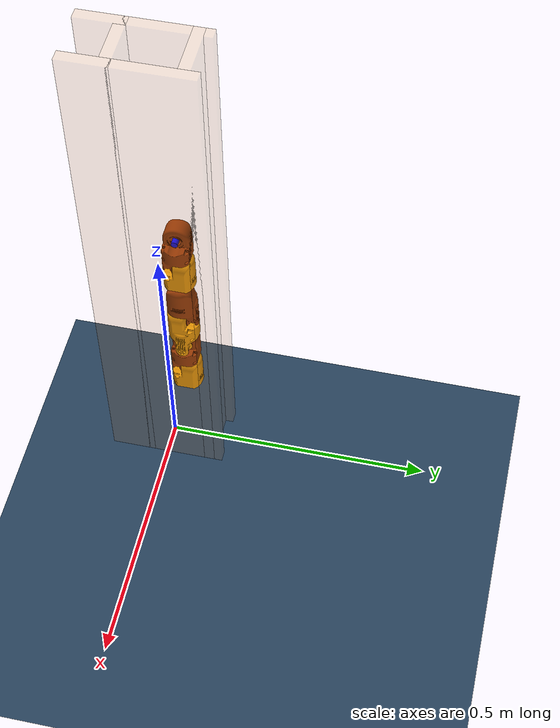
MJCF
<mujoco model="anchoring_workspace_scene">
<visual>
        <scale contactheight="0.05" contactwidth="0.01"/>
    </visual>
  <option cone="elliptic" noslip_iterations="5" integrator="implicit"/>
  <option timestep="0.0005" gravity="0 0 0"/>

  <asset>

    <texture type="skybox" builtin="gradient" rgb1=".3 .5 .7" rgb2="0 0 0" width="32" height="32"/>
    <texture name="grid" type="2d" builtin="checker" width="512" height="512" rgb1=".1 .2 .3" rgb2=".2 .3 .4"/>
    <material name="grid" texture="grid" texrepeat="1 1" texuniform="true" reflectance=".2"/>
  </asset>

  <include file="../J_snake_robot.xml"/>

  <worldbody>
    <light pos="0 0 1.5" dir="0 0 -1" directional="true"/>
    <geom name="floor" size="5 5 .05" type="plane" material="grid" group="2"/>
    <!-- fully enclosed solar panel attachment gap: 9.5cm center-to-center (7.5cm inner gap x),
         20cm inner depth (y), representative of satellite panel-to-body interface channels -->
    <body name="Wall1" pos="0.0475 0 0">
        <geom name="Wall_1" type="box" pos="0 0 0.5" size="0.01 0.11 0.5" contype="1" conaffinity="2" group="2" rgba="0.8 0.5 0.2 0.2"/>
    </body>

    <body name="Wall2" pos="-0.0475 0 0">
        <geom name="Wall_2" type="box" pos="0 0 0.5" size="0.01 0.11 0.5" contype="1" conaffinity="2" group="2" rgba="0.8 0.5 0.2 0.2"/>
    </body>

    <body name="Wall3" pos="0 0.085 0">
        <geom name="Wall_3" type="box" pos="0 0 0.5" size="0.0575 0.01 0.5" contype="1" conaffinity="2" group="2" rgba="0.8 0.5 0.2 0.2"/>
    </body>

    <body name="Wall4" pos="0 -0.035 0">
        <geom name="Wall_4" type="box" pos="0 0 0.5" size="0.0575 0.01 0.5" contype="1" conaffinity="2" group="2" rgba="0.8 0.5 0.2 0.2"/>
    </body>
  </worldbody>
  </mujoco>

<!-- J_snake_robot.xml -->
<mujoco>
  <compiler angle="radian"/>
  <asset>
    <mesh name="J_mesh" file="anchor_scenes/snake_mesh/J_Mesh.STL" scale="0.001 0.001 0.001"/>
    <material name="yellow_light" rgba="1 0.647 0 1"/>
    <material name="yellow_dark" rgba="0.6 0.2 0 1"/>
    <material name="blue" rgba="0 0 1 1"/>
    <material name="red" rgba="1 0 0 1"/>
  </asset>

  <worldbody>
    <light pos="0 0 1.5" dir="0 0 -1" directional="true"/>

    <body name="mod_head_body" pos="0 0 0.1" euler="0 -1.57079633 0">
      <joint name="mod_head_freejoint" type="free" damping="5.0"/>
      <inertial pos="0 0 0" mass="0.250" diaginertia="0.0003126 0.0003126 0.0001051"/>
      <geom name="mesh_head" type="mesh" mesh="J_mesh" pos="0 0 0" material="yellow_light" contype="2" conaffinity="1" group="0"/>

      <body name="mod_head_out" pos="0.08747400 0.02050000 0.02509800" euler="-1.57079633 0.00000000 0.00000000">
        <inertial pos="0 0 0" mass="0.01" diaginertia="0.0001 0.0001 0.0001"/>

        <body name="mod_0_in" pos="0 0 0" euler="3.14159265 0.00000000 -1.57079633">
          <joint name="joint_0" type="hinge" pos="0 0 0" axis="0 0 1" range="-1.5708 1.5708" limited="true" damping="0.1" frictionloss="0.2"/>
          <inertial pos="0 0 0" mass="0.01" diaginertia="0.0001 0.0001 0.0001"/>
          <geom name="geom_0_in" type="cylinder" size="0.006 0.01" pos="0 0 0" material="red" contype="1" conaffinity="4" group="1"/>

          <body name="mod_0_body" pos="0.02945300 -0.01545000 -0.03409800" euler="0.00000000 0.00000000 1.57079633">
            <inertial pos="0 0 0" mass="0.250" diaginertia="0.0003126 0.0003126 0.0001051"/>
            <geom name="mesh_0" type="mesh" mesh="J_mesh" pos="0 0 0" material="yellow_dark" contype="2" conaffinity="1" group="0"/>

            <body name="mod_0_out" pos="0.08747400 0.02050000 0.02509800" euler="1.57079633 0.00000000 0.00000000">
              <inertial pos="0 0 0" mass="0.01" diaginertia="0.0001 0.0001 0.0001"/>
              <geom name="geom_0_out" type="cylinder" size="0.006 0.0075" pos="0 0 0" material="blue" contype="1" conaffinity="4" group="1"/>

              <body name="mod_1_in" pos="0 0 0" euler="3.14159265 0.00000000 1.57079633">
                <joint name="joint_1" type="hinge" pos="0 0 0" axis="0 0 1" range="-1.5708 1.5708" limited="true" damping="0.1" frictionloss="0.2"/>
                <inertial pos="0 0 0" mass="0.01" diaginertia="0.0001 0.0001 0.0001"/>
                <geom name="geom_1_in" type="cylinder" size="0.006 0.01" pos="0 0 0" material="red" contype="1" conaffinity="4" group="1"/>

                <body name="mod_1_body" pos="0.02945300 0.01545000 0.03409800" euler="3.14159265 0.00000000 1.57079633">
                  <inertial pos="0 0 0" mass="0.250" diaginertia="0.0003126 0.0003126 0.0001051"/>
                  <geom name="mesh_1" type="mesh" mesh="J_mesh" pos="0 0 0" material="yellow_light" contype="2" conaffinity="1" group="0"/>

                  <body name="mod_1_out" pos="0.08747400 0.02050000 0.02509800" euler="1.57079633 0.00000000 0.00000000">
                    <inertial pos="0 0 0" mass="0.01" diaginertia="0.0001 0.0001 0.0001"/>
                    <geom name="geom_1_out" type="cylinder" size="0.006 0.0075" pos="0 0 0" material="blue" contype="1" conaffinity="4" group="1"/>

                    <body name="mod_2_in" pos="0 0 0" euler="3.14159265 0.00000000 1.57079633">
                      <joint name="joint_2" type="hinge" pos="0 0 0" axis="0 0 1" range="-1.5708 1.5708" limited="true" damping="0.1" frictionloss="0.2"/>
                      <inertial pos="0 0 0" mass="0.01" diaginertia="0.0001 0.0001 0.0001"/>
                      <geom name="geom_2_in" type="cylinder" size="0.006 0.01" pos="0 0 0" material="red" contype="1" conaffinity="4" group="1"/>

                      <body name="mod_2_body" pos="0.02945300 0.01545000 0.03409800" euler="3.14159265 0.00000000 1.57079633">
                        <inertial pos="0 0 0" mass="0.250" diaginertia="0.0003126 0.0003126 0.0001051"/>
                        <geom name="mesh_2" type="mesh" mesh="J_mesh" pos="0 0 0" material="yellow_dark" contype="2" conaffinity="1" group="0"/>

                        <body name="mod_2_out" pos="0.08747400 0.02050000 0.02509800" euler="1.57079633 0.00000000 0.00000000">
                          <inertial pos="0 0 0" mass="0.01" diaginertia="0.0001 0.0001 0.0001"/>
                          <geom name="geom_2_out" type="cylinder" size="0.006 0.0075" pos="0 0 0" material="blue" contype="1" conaffinity="4" group="1"/>

                          <body name="mod_3_in" pos="0 0 0" euler="3.14159265 0.00000000 1.57079633">
                            <joint name="joint_3" type="hinge" pos="0 0 0" axis="0 0 1" range="-1.5708 1.5708" limited="true" damping="0.1" frictionloss="0.2"/>
                            <inertial pos="0 0 0" mass="0.01" diaginertia="0.0001 0.0001 0.0001"/>
                            <geom name="geom_3_in" type="cylinder" size="0.006 0.01" pos="0 0 0" material="red" contype="1" conaffinity="4" group="1"/>

                            <body name="mod_3_body" pos="0.02945300 0.01545000 0.03409800" euler="3.14159265 0.00000000 1.57079633">
                              <inertial pos="0 0 0" mass="0.250" diaginertia="0.0003126 0.0003126 0.0001051"/>
                              <geom name="mesh_3" type="mesh" mesh="J_mesh" pos="0 0 0" material="yellow_light" contype="2" conaffinity="1" group="0"/>

                              <body name="mod_3_out" pos="0.08747400 0.02050000 0.02509800" euler="1.57079633 0.00000000 0.00000000">
                                <inertial pos="0 0 0" mass="0.01" diaginertia="0.0001 0.0001 0.0001"/>
                                <geom name="geom_3_out" type="cylinder" size="0.006 0.0075" pos="0 0 0" material="blue" contype="1" conaffinity="4" group="1"/>

                                <body name="mod_4_in" pos="0 0 0" euler="3.14159265 0.00000000 1.57079633">
                                  <joint name="joint_4" type="hinge" pos="0 0 0" axis="0 0 1" range="-1.5708 1.5708" limited="true" damping="0.1" frictionloss="0.2"/>
                                  <inertial pos="0 0 0" mass="0.01" diaginertia="0.0001 0.0001 0.0001"/>
                                  <geom name="geom_4_in" type="cylinder" size="0.006 0.01" pos="0 0 0" material="red" contype="1" conaffinity="4" group="1"/>

                                  <body name="mod_4_body" pos="0.02945300 0.01545000 0.03409800" euler="3.14159265 0.00000000 1.57079633">
                                    <inertial pos="0 0 0" mass="0.250" diaginertia="0.0003126 0.0003126 0.0001051"/>
                                    <geom name="mesh_4" type="mesh" mesh="J_mesh" pos="0 0 0" material="yellow_dark" contype="2" conaffinity="1" group="0"/>

                                    <body name="mod_4_out" pos="0.08747400 0.02050000 0.02509800" euler="1.57079633 0.00000000 0.00000000">
                                      <inertial pos="0 0 0" mass="0.01" diaginertia="0.0001 0.0001 0.0001"/>
                                      <geom name="geom_4_out" type="cylinder" size="0.006 0.0075" pos="0 0 0" material="blue" contype="1" conaffinity="4" group="1"/>

                                    </body>
                                  </body>
                                </body>
                              </body>
                            </body>
                          </body>
                        </body>
                      </body>
                    </body>
                  </body>
                </body>
              </body>
            </body>
          </body>
        </body>
      </body>
    </body>

  </worldbody>

  <actuator>
    <position name="servo_0_pos" joint="joint_0" kp="10" ctrlrange="-1.5708 1.5708" ctrllimited="true" forcerange="-10.0 10.0" forcelimited="true"/>
    <position name="servo_1_pos" joint="joint_1" kp="10" ctrlrange="-1.5708 1.5708" ctrllimited="true" forcerange="-10.0 10.0" forcelimited="true"/>
    <position name="servo_2_pos" joint="joint_2" kp="10" ctrlrange="-1.5708 1.5708" ctrllimited="true" forcerange="-10.0 10.0" forcelimited="true"/>
    <position name="servo_3_pos" joint="joint_3" kp="10" ctrlrange="-1.5708 1.5708" ctrllimited="true" forcerange="-10.0 10.0" forcelimited="true"/>
    <position name="servo_4_pos" joint="joint_4" kp="10" ctrlrange="-1.5708 1.5708" ctrllimited="true" forcerange="-10.0 10.0" forcelimited="true"/>
    </actuator>
</mujoco>
